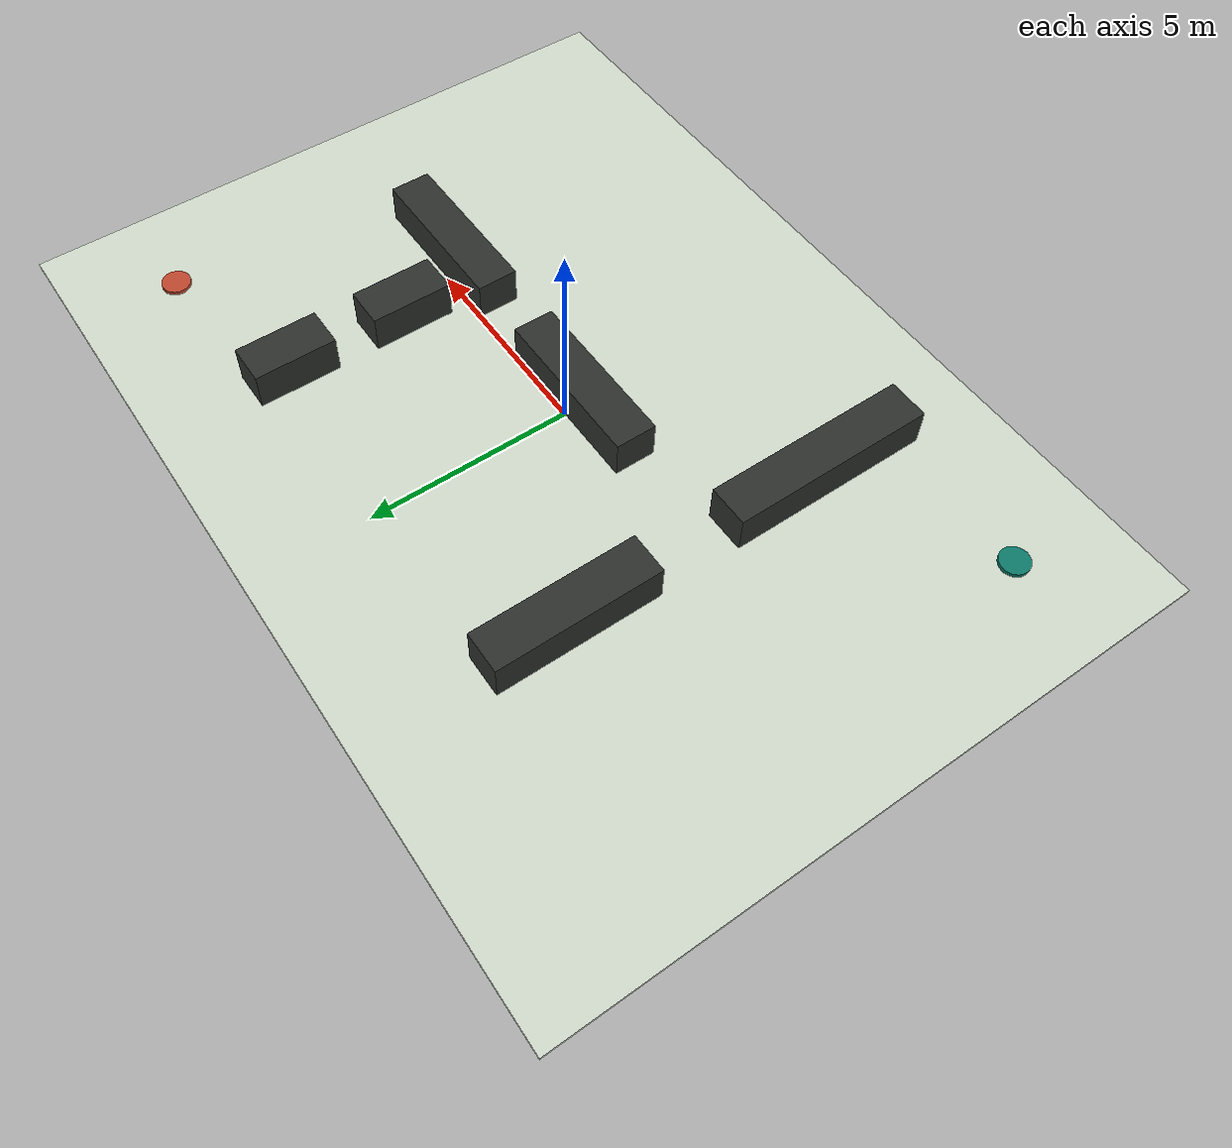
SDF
<?xml version="1.0" ?>
<sdf version="1.7">
  <world name="occupancy_grid_astar_demo">
    <gravity>0 0 -9.8</gravity>

    <light name="sun" type="directional">
      <cast_shadows>true</cast_shadows>
      <pose>0 0 12 0 0 0</pose>
      <diffuse>0.8 0.8 0.8 1</diffuse>
      <specular>0.2 0.2 0.2 1</specular>
      <direction>-0.4 0.2 -1</direction>
    </light>

    <model name="ground_plane">
      <static>true</static>
      <link name="ground">
        <collision name="ground_collision">
          <geometry>
            <box>
              <size>22 16 0.08</size>
            </box>
          </geometry>
        </collision>
        <visual name="ground_visual">
          <geometry>
            <box>
              <size>22 16 0.08</size>
            </box>
          </geometry>
          <material>
            <ambient>0.82 0.86 0.8 1</ambient>
            <diffuse>0.82 0.86 0.8 1</diffuse>
          </material>
        </visual>
      </link>
    </model>

    <model name="vertical_wall_lower">
      <static>true</static>
      <pose>-4.5 -3.5 0.5 0 0 0</pose>
      <link name="wall">
        <collision name="collision">
          <geometry>
            <box>
              <size>1 5 1</size>
            </box>
          </geometry>
        </collision>
        <visual name="visual">
          <geometry>
            <box>
              <size>1 5 1</size>
            </box>
          </geometry>
          <material>
            <ambient>0.18 0.19 0.18 1</ambient>
            <diffuse>0.18 0.19 0.18 1</diffuse>
          </material>
        </visual>
      </link>
    </model>

    <model name="vertical_wall_upper">
      <static>true</static>
      <pose>-4.5 3 0.5 0 0 0</pose>
      <link name="wall">
        <collision name="collision">
          <geometry>
            <box>
              <size>1 4 1</size>
            </box>
          </geometry>
        </collision>
        <visual name="visual">
          <geometry>
            <box>
              <size>1 4 1</size>
            </box>
          </geometry>
          <material>
            <ambient>0.18 0.19 0.18 1</ambient>
            <diffuse>0.18 0.19 0.18 1</diffuse>
          </material>
        </visual>
      </link>
    </model>

    <model name="horizontal_wall_left">
      <static>true</static>
      <pose>0 -0.5 0.5 0 0 0</pose>
      <link name="wall">
        <collision name="collision">
          <geometry>
            <box>
              <size>4 1 1</size>
            </box>
          </geometry>
        </collision>
        <visual name="visual">
          <geometry>
            <box>
              <size>4 1 1</size>
            </box>
          </geometry>
          <material>
            <ambient>0.18 0.19 0.18 1</ambient>
            <diffuse>0.18 0.19 0.18 1</diffuse>
          </material>
        </visual>
      </link>
    </model>

    <model name="horizontal_wall_right">
      <static>true</static>
      <pose>5.5 -0.5 0.5 0 0 0</pose>
      <link name="wall">
        <collision name="collision">
          <geometry>
            <box>
              <size>4 1 1</size>
            </box>
          </geometry>
        </collision>
        <visual name="visual">
          <geometry>
            <box>
              <size>4 1 1</size>
            </box>
          </geometry>
          <material>
            <ambient>0.18 0.19 0.18 1</ambient>
            <diffuse>0.18 0.19 0.18 1</diffuse>
          </material>
        </visual>
      </link>
    </model>

    <model name="goal_side_wall_lower">
      <static>true</static>
      <pose>4.5 1.5 0.5 0 0 0</pose>
      <link name="wall">
        <collision name="collision">
          <geometry>
            <box>
              <size>1 2 1</size>
            </box>
          </geometry>
        </collision>
        <visual name="visual">
          <geometry>
            <box>
              <size>1 2 1</size>
            </box>
          </geometry>
          <material>
            <ambient>0.18 0.19 0.18 1</ambient>
            <diffuse>0.18 0.19 0.18 1</diffuse>
          </material>
        </visual>
      </link>
    </model>

    <model name="goal_side_wall_upper">
      <static>true</static>
      <pose>4.5 4.5 0.5 0 0 0</pose>
      <link name="wall">
        <collision name="collision">
          <geometry>
            <box>
              <size>1 2 1</size>
            </box>
          </geometry>
        </collision>
        <visual name="visual">
          <geometry>
            <box>
              <size>1 2 1</size>
            </box>
          </geometry>
          <material>
            <ambient>0.18 0.19 0.18 1</ambient>
            <diffuse>0.18 0.19 0.18 1</diffuse>
          </material>
        </visual>
      </link>
    </model>

    <model name="start_marker">
      <static>true</static>
      <pose>-8.5 -5.5 0.08 0 0 0</pose>
      <link name="marker">
        <visual name="visual">
          <geometry>
            <cylinder>
              <radius>0.35</radius>
              <length>0.12</length>
            </cylinder>
          </geometry>
          <material>
            <ambient>0.05 0.48 0.42 1</ambient>
            <diffuse>0.05 0.48 0.42 1</diffuse>
          </material>
        </visual>
      </link>
    </model>

    <model name="goal_marker">
      <static>true</static>
      <pose>8.5 5.5 0.08 0 0 0</pose>
      <link name="marker">
        <visual name="visual">
          <geometry>
            <cylinder>
              <radius>0.35</radius>
              <length>0.12</length>
            </cylinder>
          </geometry>
          <material>
            <ambient>0.75 0.28 0.18 1</ambient>
            <diffuse>0.75 0.28 0.18 1</diffuse>
          </material>
        </visual>
      </link>
    </model>
  </world>
</sdf>
